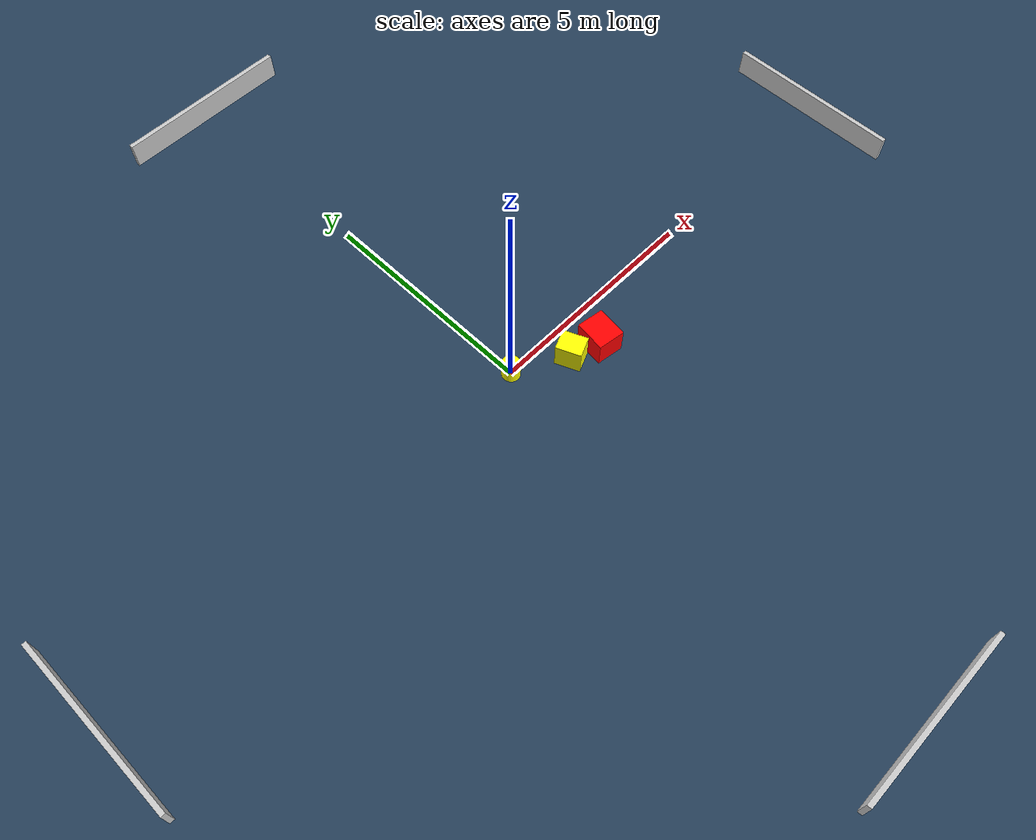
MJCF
<?xml version="1.0" ?>
<mujoco model="generated_environment">
  <option timestep="0.01" integrator="RK4" cone="elliptic"/>
  <default>
    <geom density="1"/>
  </default>
  <asset>
    <texture builtin="gradient" height="3072" name="skybox" rgb1="0.3 0.5 0.7" rgb2="0 0 0" type="skybox" width="512"/>
    <texture builtin="checker" height="300" name="groundplane" rgb1="0.2 0.3 0.4" rgb2="0.1 0.2 0.3" type="2d" width="300"/>
    <material name="groundplane" reflectance="0.2" texrepeat="5 5" texture="groundplane"/>
  </asset>
  <worldbody>
    <light dir="0 0 -1" directional="true" pos="0 0 1.5"/>
    <geom condim="3" friction="0.5 0.005 0.001" material="groundplane" name="floor" pos="0 0 0" size="0 0 0.05" type="plane"/>
    <body name="walls">
      <geom name="wall_1" condim="4" pos="-10.0 0.0 0.3" rgba="0.800000011920929 0.800000011920929 0.800000011920929 1.0" size="0.05 2.0 0.3" type="box"/>
      <geom name="wall_2" condim="4" pos="10.0 0.0 0.3" rgba="0.800000011920929 0.800000011920929 0.800000011920929 1.0" size="0.05 2.0 0.3" type="box"/>
      <geom name="wall_3" condim="4" pos="0.0 -10.0 0.3" rgba="0.800000011920929 0.800000011920929 0.800000011920929 1.0" size="2.0 0.05 0.3" type="box"/>
      <geom name="wall_4" condim="4" pos="0.0 10.0 0.3" rgba="0.800000011920929 0.800000011920929 0.800000011920929 1.0" size="2.0 0.05 0.3" type="box"/>
    </body>
    <body name="robot">
      <joint name="joint_x" type="slide" pos="0 0 0" axis="1 0 0"/>
      <joint name="joint_y" type="slide" pos="0 0 0" axis="0 1 0"/>
      <geom name="robot" type="cylinder" pos="0.0 0.0 0.2" size="0.2 0.2 0.0" mass="5.0" friction="1.0 0.005 0.0001" condim="4" rgba="1.0 1.0 0.0 1.0"/>
    </body>
    <body name="obstacle_1_movable">
      <geom name="obstacle_1_movable" condim="4" pos="1.1144186544226227 -0.6228012678539572 0.3" euler="0 0 113.02162616211042" friction="0.0 0.005 0.001" rgba="1.0 1.0 0.0 1.0" size="0.2785558969808367 0.22788042989127452 0.3" type="box" mass="0.1"/>
      <joint type="free"/>
    </body>
    <body name="obstacle_2_static">
      <geom name="obstacle_2_static" condim="4" pos="1.7702371334092062 -0.8131551524510968 0.3" euler="0 0 171.97296058543984" friction="0.0 0.005 0.001" rgba="1.0 0.0 0.0 1.0" size="0.30236433700055776 0.3461336588222024 0.3" type="box"/>
    </body>
  </worldbody>
  <actuator>
    <motor name="actuator_x" joint="joint_x" gear="1" ctrlrange="-1 1"/>
    <motor name="actuator_y" joint="joint_y" gear="1" ctrlrange="-1 1"/>
  </actuator>
</mujoco>
